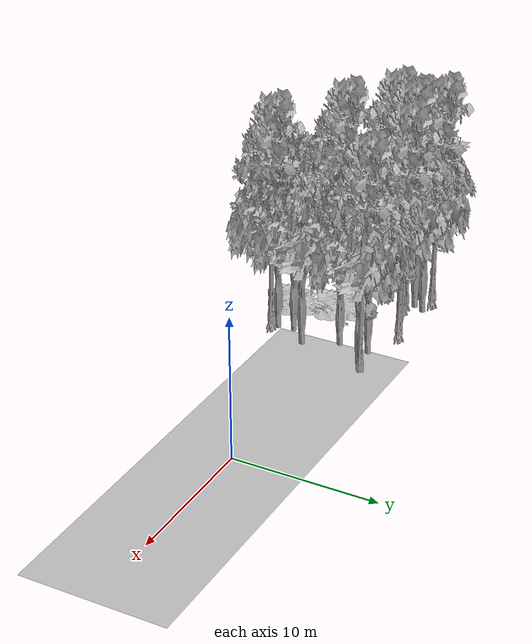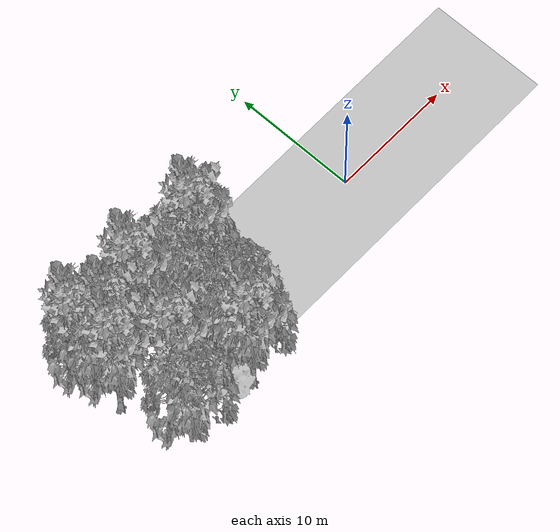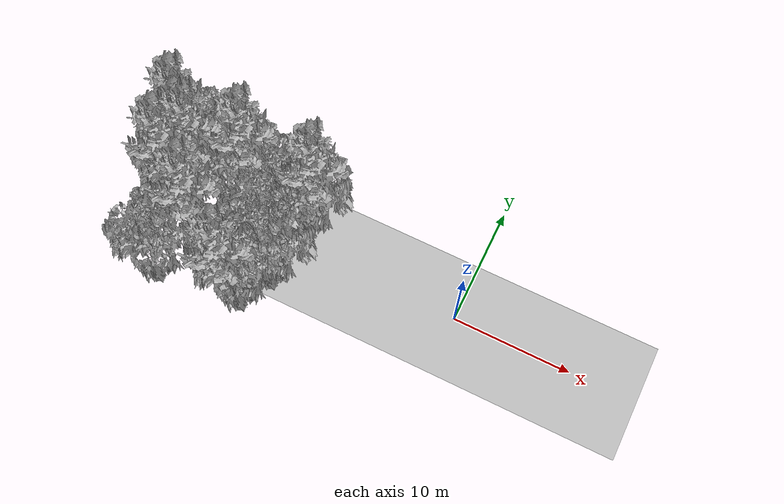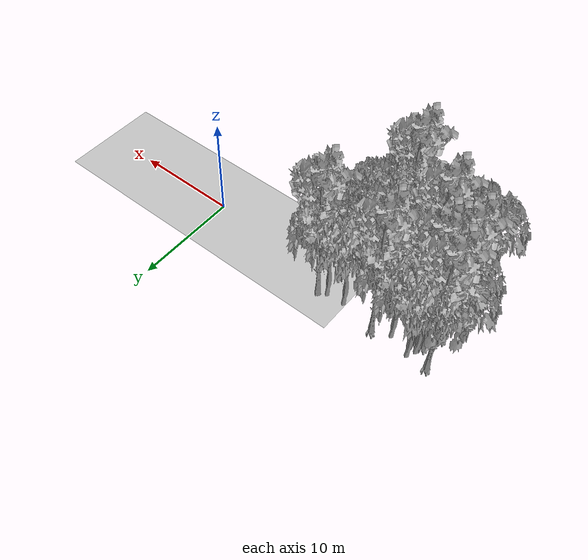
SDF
<sdf version="1.7">
 <world name="default">
  <model name="ground_plane">
   <static>1</static>
   <link name="link">
    <collision name="collision">
     <pose>-50 0 0 0 -0 0</pose>
     <geometry><plane><normal>0 0 1</normal><size>100 100</size></plane></geometry>
     <surface><contact><ode><min_depth>0.01</min_depth><max_vel>0</max_vel></ode></contact></surface>
    </collision>
    <visual name="grass">
     <cast_shadows>0</cast_shadows>
     <geometry>
      <mesh>
       <scale>0.5814285714285714 0.18142857142857144 0.1</scale>
       <uri>file://grass_plane/meshes/grass_plane.dae</uri>
      </mesh>
     </geometry>
    </visual>
   </link>
  </model>
  <model name="Tree 0">
   <static>1</static>
   <pose>-24.40015380244497 2.7771655417647025 0 1.57079 -0 0</pose>
   <link name="link">
    <collision name="collision">
     <geometry><mesh><scale>3.5 5 3.5</scale><uri>model://tree_9/meshes/tree_9.obj</uri></mesh></geometry>
    </collision>
    <visual name="visual">
     <geometry><mesh><scale>3.5 5 3.5</scale><uri>model://tree_9/meshes/tree_9.obj</uri></mesh></geometry>
    </visual>
   </link>
  </model>
  <model name="Tree 67">
   <static>1</static>
   <pose>-18.8985589633459 2.662210046289289 0 1.57079 -0 0</pose>
   <link name="link">
    <collision name="collision">
     <geometry><mesh><scale>3.5 5 3.5</scale><uri>model://tree_9/meshes/tree_9.obj</uri></mesh></geometry>
    </collision>
    <visual name="visual">
     <geometry><mesh><scale>3.5 5 3.5</scale><uri>model://tree_9/meshes/tree_9.obj</uri></mesh></geometry>
    </visual>
   </link>
  </model>
  <model name="Tree 89">
   <static>1</static>
   <pose>-20.599174662907906 2.033883528326573 0 1.57079 -0 0</pose>
   <link name="link">
    <collision name="collision">
     <geometry><mesh><scale>3.5 5 3.5</scale><uri>model://tree_2/meshes/tree_2.obj</uri></mesh></geometry>
    </collision>
    <visual name="visual">
     <geometry><mesh><scale>3.5 5 3.5</scale><uri>model://tree_2/meshes/tree_2.obj</uri></mesh></geometry>
    </visual>
   </link>
  </model>
  <model name="Tree 120">
   <static>1</static>
   <pose>-14.617412858436829 -2.6988523246624965 0 1.57079 -0 0</pose>
   <link name="link">
    <collision name="collision">
     <geometry><mesh><scale>3.5 5 3.5</scale><uri>model://tree_2/meshes/tree_2.obj</uri></mesh></geometry>
    </collision>
    <visual name="visual">
     <geometry><mesh><scale>3.5 5 3.5</scale><uri>model://tree_2/meshes/tree_2.obj</uri></mesh></geometry>
    </visual>
   </link>
  </model>
  <model name="Tree 153">
   <static>1</static>
   <pose>-23.125696506977064 1.2321343518680514 0 1.57079 -0 0</pose>
   <link name="link">
    <collision name="collision">
     <geometry><mesh><scale>3.5 5 3.5</scale><uri>model://tree_9/meshes/tree_9.obj</uri></mesh></geometry>
    </collision>
    <visual name="visual">
     <geometry><mesh><scale>3.5 5 3.5</scale><uri>model://tree_9/meshes/tree_9.obj</uri></mesh></geometry>
    </visual>
   </link>
  </model>
  <model name="Tree 178">
   <static>1</static>
   <pose>-15.990074792300575 -4.025133841838159 0 1.57079 -0 0</pose>
   <link name="link">
    <collision name="collision">
     <geometry><mesh><scale>3.5 5 3.5</scale><uri>model://tree_2/meshes/tree_2.obj</uri></mesh></geometry>
    </collision>
    <visual name="visual">
     <geometry><mesh><scale>3.5 5 3.5</scale><uri>model://tree_2/meshes/tree_2.obj</uri></mesh></geometry>
    </visual>
   </link>
  </model>
  <model name="Tree 179">
   <static>1</static>
   <pose>-13.913943690919965 1.969350279766548 0 1.57079 -0 0</pose>
   <link name="link">
    <collision name="collision">
     <geometry><mesh><scale>3.5 5 3.5</scale><uri>model://tree_2/meshes/tree_2.obj</uri></mesh></geometry>
    </collision>
    <visual name="visual">
     <geometry><mesh><scale>3.5 5 3.5</scale><uri>model://tree_2/meshes/tree_2.obj</uri></mesh></geometry>
    </visual>
   </link>
  </model>
  <model name="Tree 181">
   <static>1</static>
   <pose>-16.17347830099314 -5.940815012460348 0 1.57079 -0 0</pose>
   <link name="link">
    <collision name="collision">
     <geometry><mesh><scale>3.5 5 3.5</scale><uri>model://tree_9/meshes/tree_9.obj</uri></mesh></geometry>
    </collision>
    <visual name="visual">
     <geometry><mesh><scale>3.5 5 3.5</scale><uri>model://tree_9/meshes/tree_9.obj</uri></mesh></geometry>
    </visual>
   </link>
  </model>
  <model name="Tree 222">
   <static>1</static>
   <pose>-22.993972287431884 2.043264474323525 0 1.57079 -0 0</pose>
   <link name="link">
    <collision name="collision">
     <geometry><mesh><scale>3.5 5 3.5</scale><uri>model://tree_2/meshes/tree_2.obj</uri></mesh></geometry>
    </collision>
    <visual name="visual">
     <geometry><mesh><scale>3.5 5 3.5</scale><uri>model://tree_2/meshes/tree_2.obj</uri></mesh></geometry>
    </visual>
   </link>
  </model>
  <model name="Tree 281">
   <static>1</static>
   <pose>-13.109659319660736 2.4443757382848226 0 1.57079 -0 0</pose>
   <link name="link">
    <collision name="collision">
     <geometry><mesh><scale>3.5 5 3.5</scale><uri>model://tree_9/meshes/tree_9.obj</uri></mesh></geometry>
    </collision>
    <visual name="visual">
     <geometry><mesh><scale>3.5 5 3.5</scale><uri>model://tree_9/meshes/tree_9.obj</uri></mesh></geometry>
    </visual>
   </link>
  </model>
  <model name="Tree 284">
   <static>1</static>
   <pose>-22.618351320334835 2.7995176028120348 0 1.57079 -0 0</pose>
   <link name="link">
    <collision name="collision">
     <geometry><mesh><scale>3.5 5 3.5</scale><uri>model://tree_2/meshes/tree_2.obj</uri></mesh></geometry>
    </collision>
    <visual name="visual">
     <geometry><mesh><scale>3.5 5 3.5</scale><uri>model://tree_2/meshes/tree_2.obj</uri></mesh></geometry>
    </visual>
   </link>
  </model>
  <model name="Tree 343">
   <static>1</static>
   <pose>-23.90221078477613 -0.41634858408199626 0 1.57079 -0 0</pose>
   <link name="link">
    <collision name="collision">
     <geometry><mesh><scale>3.5 5 3.5</scale><uri>model://tree_9/meshes/tree_9.obj</uri></mesh></geometry>
    </collision>
    <visual name="visual">
     <geometry><mesh><scale>3.5 5 3.5</scale><uri>model://tree_9/meshes/tree_9.obj</uri></mesh></geometry>
    </visual>
   </link>
  </model>
  <model name="Tree 352">
   <static>1</static>
   <pose>-22.46292889736187 -5.8552661191066555 0 1.57079 -0 0</pose>
   <link name="link">
    <collision name="collision">
     <geometry><mesh><scale>3.5 5 3.5</scale><uri>model://tree_2/meshes/tree_2.obj</uri></mesh></geometry>
    </collision>
    <visual name="visual">
     <geometry><mesh><scale>3.5 5 3.5</scale><uri>model://tree_2/meshes/tree_2.obj</uri></mesh></geometry>
    </visual>
   </link>
  </model>
  <model name="Tree 383">
   <static>1</static>
   <pose>-17.61393575893519 -4.507191569830839 0 1.57079 -0 0</pose>
   <link name="link">
    <collision name="collision">
     <geometry><mesh><scale>4 2.5 4</scale><uri>model://tree_1/meshes/tree_1.obj</uri></mesh></geometry>
    </collision>
    <visual name="visual">
     <geometry><mesh><scale>4 2.5 4</scale><uri>model://tree_1/meshes/tree_1.obj</uri></mesh></geometry>
    </visual>
   </link>
  </model>
  <model name="Tree 394">
   <static>1</static>
   <pose>-24.164693697649316 1.8254374780807474 0 1.57079 -0 0</pose>
   <link name="link">
    <collision name="collision">
     <geometry><mesh><scale>3.5 5 3.5</scale><uri>model://tree_2/meshes/tree_2.obj</uri></mesh></geometry>
    </collision>
    <visual name="visual">
     <geometry><mesh><scale>3.5 5 3.5</scale><uri>model://tree_2/meshes/tree_2.obj</uri></mesh></geometry>
    </visual>
   </link>
  </model>
  <model name="Tree 398">
   <static>1</static>
   <pose>-15.869509138621673 -5.182508818649033 0 1.57079 -0 0</pose>
   <link name="link">
    <collision name="collision">
     <geometry><mesh><scale>3.5 5 3.5</scale><uri>model://tree_2/meshes/tree_2.obj</uri></mesh></geometry>
    </collision>
    <visual name="visual">
     <geometry><mesh><scale>3.5 5 3.5</scale><uri>model://tree_2/meshes/tree_2.obj</uri></mesh></geometry>
    </visual>
   </link>
  </model>
  <model name="Tree 410">
   <static>1</static>
   <pose>-20.648941536283047 -2.756980995108922 0 1.57079 -0 0</pose>
   <link name="link">
    <collision name="collision">
     <geometry><mesh><scale>3.5 5 3.5</scale><uri>model://tree_9/meshes/tree_9.obj</uri></mesh></geometry>
    </collision>
    <visual name="visual">
     <geometry><mesh><scale>3.5 5 3.5</scale><uri>model://tree_9/meshes/tree_9.obj</uri></mesh></geometry>
    </visual>
   </link>
  </model>
  <model name="Tree 440">
   <static>1</static>
   <pose>-15.710995565763774 -0.32287760515218444 0 1.57079 -0 0</pose>
   <link name="link">
    <collision name="collision">
     <geometry><mesh><scale>3.5 5 3.5</scale><uri>model://tree_2/meshes/tree_2.obj</uri></mesh></geometry>
    </collision>
    <visual name="visual">
     <geometry><mesh><scale>3.5 5 3.5</scale><uri>model://tree_2/meshes/tree_2.obj</uri></mesh></geometry>
    </visual>
   </link>
  </model>
  <model name="Tree 477">
   <static>1</static>
   <pose>-23.513214982179136 -0.014394258676651006 0 1.57079 -0 0</pose>
   <link name="link">
    <collision name="collision">
     <geometry><mesh><scale>3.5 5 3.5</scale><uri>model://tree_2/meshes/tree_2.obj</uri></mesh></geometry>
    </collision>
    <visual name="visual">
     <geometry><mesh><scale>3.5 5 3.5</scale><uri>model://tree_2/meshes/tree_2.obj</uri></mesh></geometry>
    </visual>
   </link>
  </model>
  <model name="Tree 500">
   <static>1</static>
   <pose>-15.589024137272787 1.867366630052743 0 1.57079 -0 0</pose>
   <link name="link">
    <collision name="collision">
     <geometry><mesh><scale>3.5 5 3.5</scale><uri>model://tree_2/meshes/tree_2.obj</uri></mesh></geometry>
    </collision>
    <visual name="visual">
     <geometry><mesh><scale>3.5 5 3.5</scale><uri>model://tree_2/meshes/tree_2.obj</uri></mesh></geometry>
    </visual>
   </link>
  </model>
  <model name="Tree 515">
   <static>1</static>
   <pose>-18.32562508954178 -1.4679067376889012 0 1.57079 -0 0</pose>
   <link name="link">
    <collision name="collision">
     <geometry><mesh><scale>4 2.5 4</scale><uri>model://tree_1/meshes/tree_1.obj</uri></mesh></geometry>
    </collision>
    <visual name="visual">
     <geometry><mesh><scale>4 2.5 4</scale><uri>model://tree_1/meshes/tree_1.obj</uri></mesh></geometry>
    </visual>
   </link>
  </model>
  <model name="Tree 534">
   <static>1</static>
   <pose>-22.448811646495976 1.3515772601209335 0 1.57079 -0 0</pose>
   <link name="link">
    <collision name="collision">
     <geometry><mesh><scale>3.5 5 3.5</scale><uri>model://tree_9/meshes/tree_9.obj</uri></mesh></geometry>
    </collision>
    <visual name="visual">
     <geometry><mesh><scale>3.5 5 3.5</scale><uri>model://tree_9/meshes/tree_9.obj</uri></mesh></geometry>
    </visual>
   </link>
  </model>
 </world>
</sdf>
